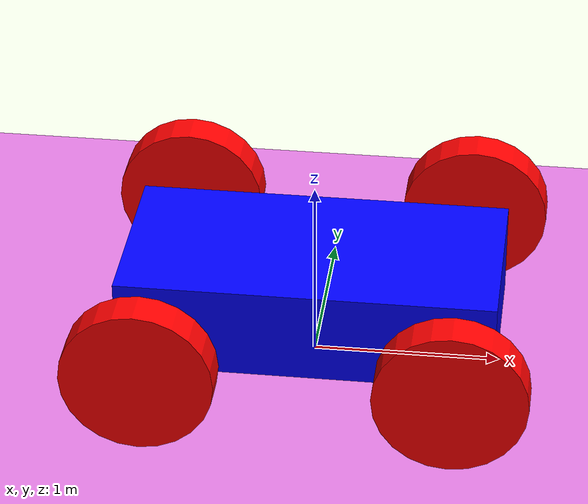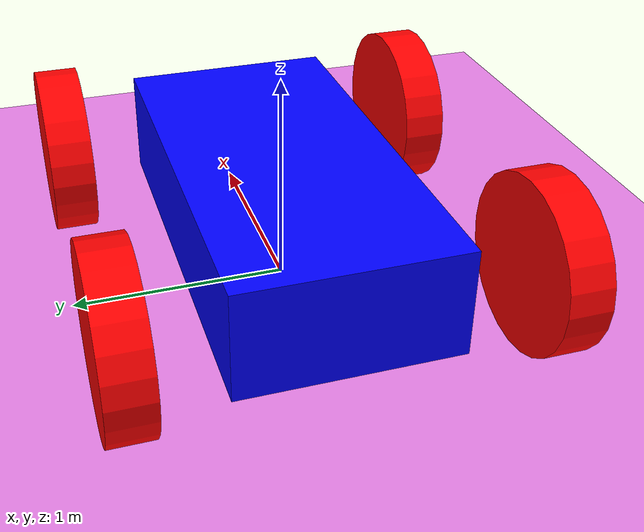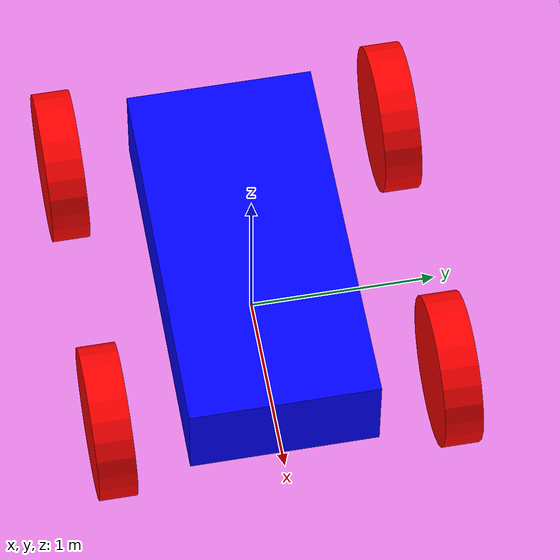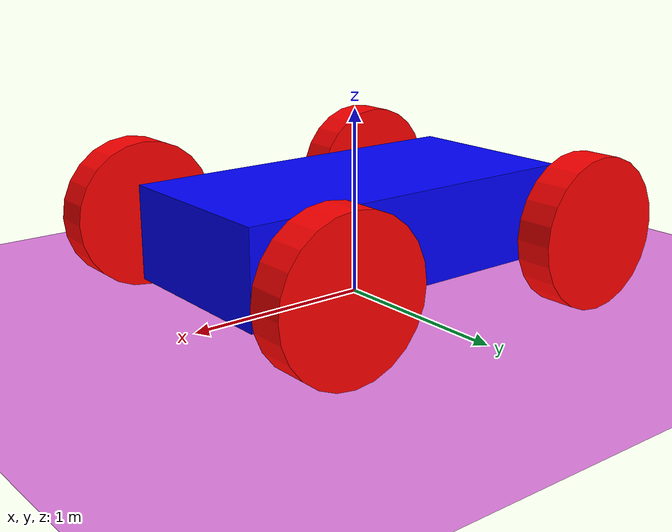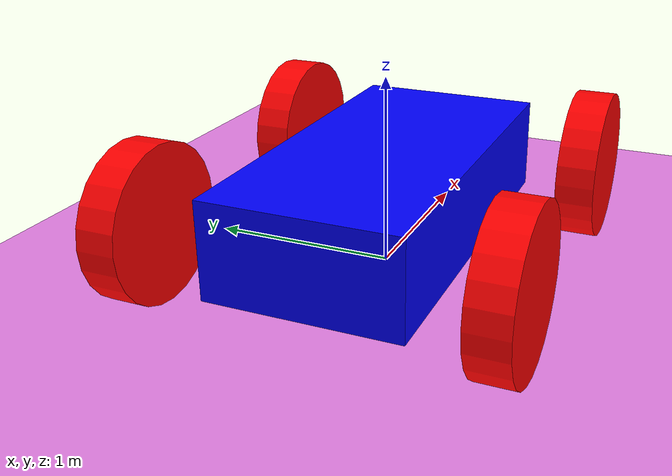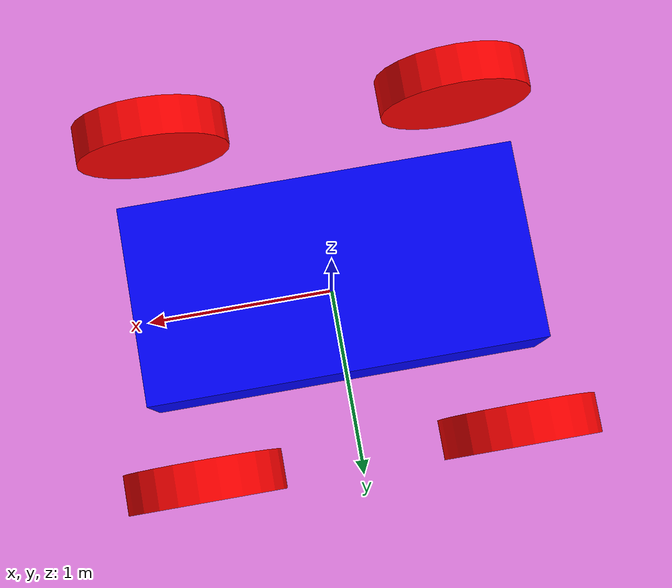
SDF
<?xml version="1.0" ?>
<sdf version="1.8">
<world name="simworld">
    <physics name="1ms" type="ignored">
        <max_step_size>0.001</max_step_size>
        <real_time_factor>1.0</real_time_factor>
    </physics>
    <plugin
        filename="gz-sim-physics-system"
        name="gz::sim::systems::Physics">
    </plugin>
    <plugin
        filename="gz-sim-user-commands-system"
        name="gz::sim::systems::UserCommands">
    </plugin>
    <plugin
        filename="gz-sim-scene-broadcaster-system"
        name="gz::sim::systems::SceneBroadcaster">
    </plugin>
    <plugin filename="gz-sim-imu-system"
        name="gz::sim::systems::Imu">
    </plugin>

    <model name="ground_plane">
        <static>true</static>
        <link name="link">
            <collision name="collision">
            <geometry>
                <plane>
                <normal>0 0 1</normal>
                </plane>
            </geometry>
            </collision>
            <visual name="visual">
            <geometry>
                <plane>
                <normal>0 0 1</normal>
                <size>10 10</size>
                </plane>
            </geometry>
            <material>
                <diffuse>0.9 0.5 0.9 0.7</diffuse>
            </material>
            </visual>
        </link>
    </model>

    <model name='car' canonical_link='chassis'>
        <pose relative_to='world'>0 0 0 0 0 0</pose>
        <link name='chassis'>
            <pose relative_to='__model__'>0 0 0.4 0 0 0</pose>
            <inertial>
                <mass>1.14395</mass>
                <inertia>
                    <ixx>0.095329</ixx>
                    <ixy>0</ixy>
                    <ixz>0</ixz>
                    <iyy>0.381317</iyy>
                    <iyz>0</iyz>
                    <izz>0.476646</izz>
                </inertia>
            </inertial>
            <visual name='visual'>
                <geometry>
                    <box>
                        <size>2.0 1.0 0.5</size>
                    </box>
                </geometry>
                <material>
                    <diffuse>0.0 0.0 1.0 1</diffuse>
                </material>
            </visual>
            <collision name='collision'>
                <geometry>
                    <box>
                        <size>2.0 1.0 0.5</size>
                    </box>
                </geometry>
            </collision>
            <sensor name="imu_sensor" type="imu">
                <always_on>1</always_on>
                <update_rate>1</update_rate>
                <visualize>true</visualize>
                <topic>imu</topic>
            </sensor>
        </link>
        <link name='left_steering_link'>
            <pose relative_to="chassis">0.8 0.9 0 0 0 0</pose>
            <inertial>
                <mass>0.1</mass>
                <inertia>
                    <ixx>0.000167</ixx><ixy>0</ixy><ixz>0</ixz>
                    <iyy>0.000167</iyy><iyz>0</iyz>
                    <izz>0.000167</izz>
                </inertia>
            </inertial>
        </link>
        <link name='right_steering_link'>
            <pose relative_to="chassis">0.8 -0.9 0 0 0 0</pose>
            <inertial>
                <mass>0.1</mass>
                <inertia>
                    <ixx>0.000167</ixx><ixy>0</ixy><ixz>0</ixz>
                    <iyy>0.000167</iyy><iyz>0</iyz>
                    <izz>0.000167</izz>
                </inertia>
            </inertial>
        </link>
        <link name='left_frontwheel'>
            <pose relative_to="left_steering_link">0 0 0 -1.5707 0 0</pose>
            <inertial>
                <mass>1</mass>
                <inertia>
                    <ixx>0.043333</ixx><ixy>0</ixy><ixz>0</ixz>
                    <iyy>0.043333</iyy><iyz>0</iyz>
                    <izz>0.08</izz>
                </inertia>
            </inertial>
            <visual name='visual'>
                <geometry>
                    <cylinder><radius>0.4</radius><length>0.2</length></cylinder>
                </geometry>
                <material><diffuse>1.0 0.0 0.0 1</diffuse></material>
            </visual>
            <collision name='collision'>
                <geometry>
                    <cylinder><radius>0.4</radius><length>0.2</length></cylinder>
                </geometry>
            </collision>
        </link>
        <link name='right_frontwheel'>
            <pose relative_to="right_steering_link">0 0 0 -1.5707 0 0</pose>
            <inertial>
                <mass>1</mass>
                <inertia>
                    <ixx>0.043333</ixx><ixy>0</ixy><ixz>0</ixz>
                    <iyy>0.043333</iyy><iyz>0</iyz>
                    <izz>0.08</izz>
                </inertia>
            </inertial>
            <visual name='visual'>
                <geometry>
                    <cylinder><radius>0.4</radius><length>0.2</length></cylinder>
                </geometry>
                <material><diffuse>1.0 0.0 0.0 1</diffuse></material>
            </visual>
            <collision name='collision'>
                <geometry>
                    <cylinder><radius>0.4</radius><length>0.2</length></cylinder>
                </geometry>
            </collision>
        </link>

        <link name='left_backwheel'>
            <pose relative_to="chassis">-0.8 0.9 0 -1.5707 0 0</pose>
            <inertial>
                <mass>1</mass>
                <inertia>
                    <ixx>0.043333</ixx>
                    <ixy>0</ixy>
                    <ixz>0</ixz>
                    <iyy>0.043333</iyy>
                    <iyz>0</iyz>
                    <izz>0.08</izz>
                </inertia>
            </inertial>
            <visual name='visual'>
                <geometry>
                    <cylinder>
                        <radius>0.4</radius>
                        <length>0.2</length>
                    </cylinder>
                </geometry>
                <material>
                    <diffuse>1.0 0.0 0.0 1</diffuse>
                </material>
            </visual>
            <collision name='collision'>
                <geometry>
                    <cylinder>
                        <radius>0.4</radius>
                        <length>0.2</length>
                    </cylinder>
                </geometry>
            </collision>
        </link>

        <link name='right_backwheel'>
            <pose relative_to="chassis">-0.8 -0.9 0 -1.5707 0 0</pose>
            <inertial>
                <mass>1</mass>
                <inertia>
                    <ixx>0.043333</ixx>
                    <ixy>0</ixy>
                    <ixz>0</ixz>
                    <iyy>0.043333</iyy>
                    <iyz>0</iyz>
                    <izz>0.08</izz>
                </inertia>
            </inertial>
            <visual name='visual'>
                <geometry>
                    <cylinder>
                        <radius>0.4</radius>
                        <length>0.2</length>
                    </cylinder>
                </geometry>
                <material>
                    <diffuse>1.0 0.0 0.0 1</diffuse>
                </material>
            </visual>
            <collision name='collision'>
                <geometry>
                    <cylinder>
                        <radius>0.4</radius>
                        <length>0.2</length>
                    </cylinder>
                </geometry>
            </collision>
        </link>
        <joint name='left_steering_joint' type='revolute'>
            <pose relative_to='left_steering_link'/>
            <parent>chassis</parent>
            <child>left_steering_link</child>
            <axis>
                <xyz expressed_in='__model__'>0 0 1</xyz>
                <limit>
                    <lower>-0.6</lower>  <!-- ~34 degrees -->
                    <upper>0.6</upper>
                </limit>
            </axis>
        </joint>

        <joint name='right_steering_joint' type='revolute'>
            <pose relative_to='right_steering_link'/>
            <parent>chassis</parent>
            <child>right_steering_link</child>
            <axis>
                <xyz expressed_in='__model__'>0 0 1</xyz>
                <limit>
                    <lower>-0.6</lower>
                    <upper>0.6</upper>
                </limit>
            </axis>
        </joint>

        <joint name='left_frontwheel_joint' type='revolute'>
            <pose relative_to='left_frontwheel'/>
            <parent>left_steering_link</parent>
            <child>left_frontwheel</child>
            <axis>
                <xyz expressed_in='__model__'>0 1 0</xyz>
            </axis>
        </joint>

        <joint name='right_frontwheel_joint' type='revolute'>
            <pose relative_to='right_frontwheel'/>
            <parent>right_steering_link</parent>
            <child>right_frontwheel</child>
            <axis>
                <xyz expressed_in='__model__'>0 1 0</xyz>
            </axis>
        </joint>

        <joint name='left_backwheel_joint' type='revolute'>
            <pose relative_to='left_backwheel'/>
            <parent>chassis</parent>
            <child>left_backwheel</child>
            <axis>
                <xyz expressed_in='__model__'>0 1 0</xyz>
            </axis>
        </joint>

        <joint name='right_backwheel_joint' type='revolute'>
            <pose relative_to='right_backwheel'/>
            <parent>chassis</parent>
            <child>right_backwheel</child>
            <axis>
                <xyz expressed_in='__model__'>0 1 0</xyz>
            </axis>
        </joint>
        <plugin
            filename="gz-sim-ackermann-steering-system"
            name="gz::sim::systems::AckermannSteering">
            <left_joint>left_backwheel_joint</left_joint>
            <right_joint>right_backwheel_joint</right_joint>
            <left_steering_joint>left_steering_joint</left_steering_joint>
            <right_steering_joint>right_steering_joint</right_steering_joint>
            <kingpin_width>1.8</kingpin_width>       <!-- matches wheel_separation -->
            <steering_limit>0.6</steering_limit>     <!-- must match joint limits -->
            <wheel_base>1.6</wheel_base>             <!-- distance front to rear axle -->
            <wheel_separation>1.8</wheel_separation>
            <wheel_radius>0.4</wheel_radius>
            <odom_publish_frequency>1</odom_publish_frequency>
            <topic>cmd_vel</topic>
        </plugin>
    </model>

</world>
</sdf>
